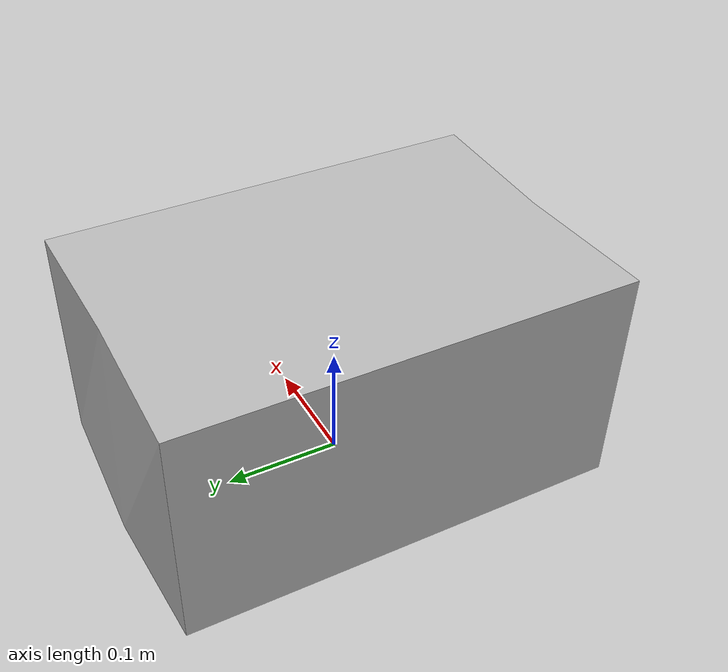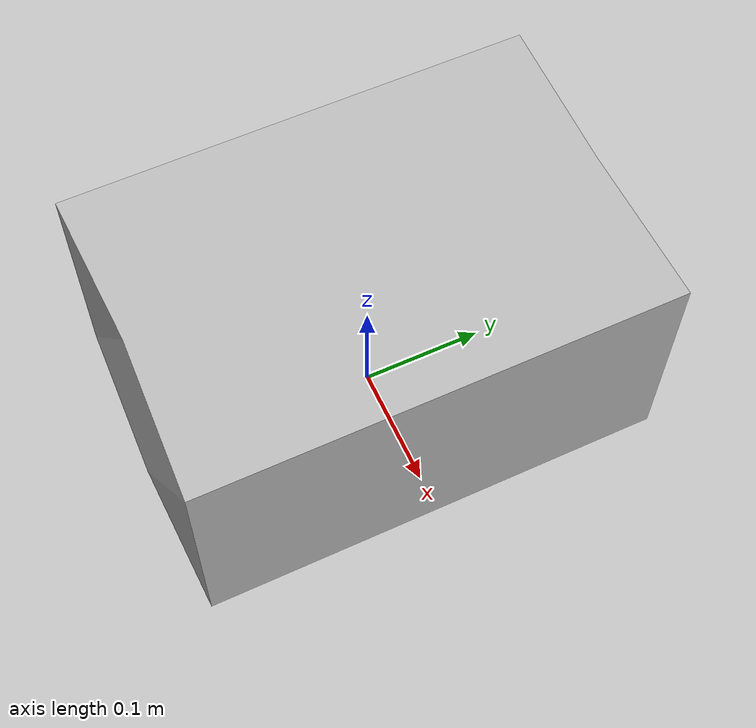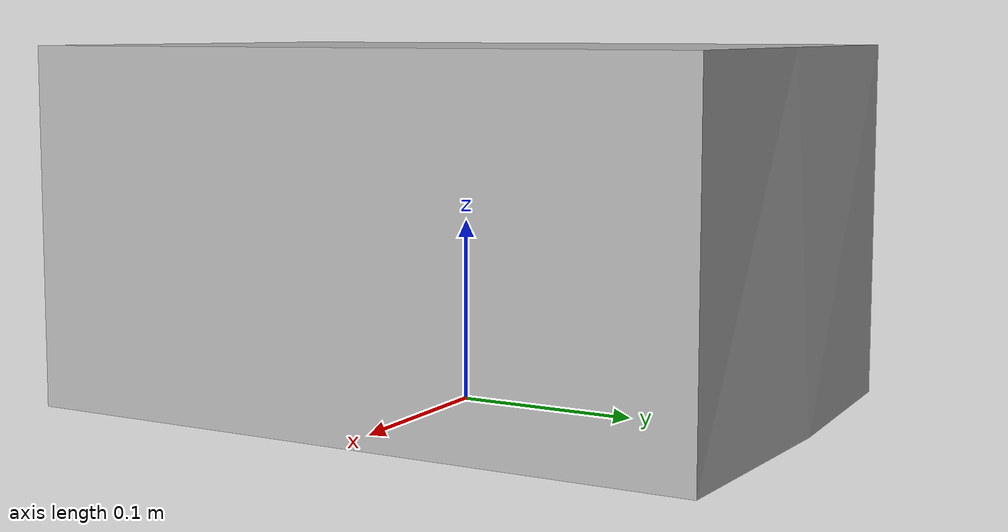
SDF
<?xml version='1.0'?>
<sdf version='1.7'>
  <model name='crate'>
    <link name='link'>
      <inertial>
        <mass>1</mass>
        <pose>0.000014 0.000507 0.097607 0 -0 0</pose>
        <inertia>
          <ixx>0.041666667</ixx>
          <ixy>0</ixy>
          <ixz>0</ixz>
          <iyy>0.056666667</iyy>
          <iyz>0</iyz>
          <izz>0.068333333</izz>
        </inertia>
      </inertial>
      <gravity>1</gravity>
      <self_collide>0</self_collide>
      <kinematic>0</kinematic>
      <enable_wind>0</enable_wind>
      <visual name='visual'>
        <pose>0 0 0 0 -0 0</pose>
        <geometry>
          <mesh>
            <uri>model://crate/crate.dae</uri>
            <scale>1 1 1</scale>
          </mesh>
        </geometry>
        <transparency>0</transparency>
        <cast_shadows>1</cast_shadows>
      </visual>
      <collision name='collision'>
        <laser_retro>0</laser_retro>
        <max_contacts>10</max_contacts>
        <pose>0 0 0 0 -0 0</pose>
        <geometry>
          <mesh>
            <uri>model://crate/crate.dae</uri>
            <scale>1 1 1</scale>
          </mesh>
        </geometry>
        <surface>
          <friction>
            <ode>
              <mu>1.0</mu>
              <mu2>1.0</mu2>
            </ode>
          </friction>
          <contact>
            <ode>
              <kp>10000000.0</kp>
              <kd>1.0</kd>
              <min_depth>0.001</min_depth>
              <max_vel>0.1</max_vel>
            </ode>
          </contact>
        </surface>
      </collision>
    </link>
    <static>0</static>
    <allow_auto_disable>1</allow_auto_disable>
  </model>
</sdf>
